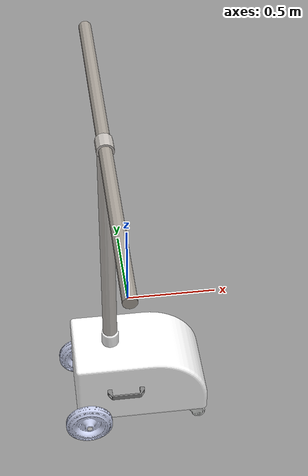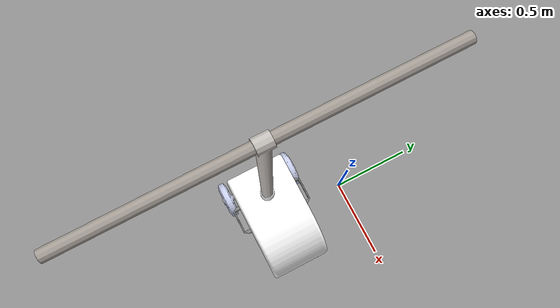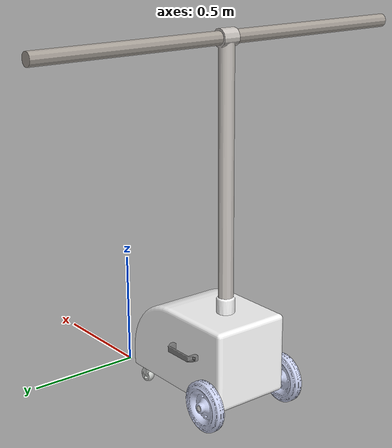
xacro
<?xml version="1.0" ?>
<!-- |    This document was autogenerated by xacro from modelagem3.urdf                | -->
<!-- |    EDITING THIS FILE BY HAND IS NOT RECOMMENDED                                 | -->
<robot name="modelagem3">
  <link name="corpo">
    <inertial>
      <origin rpy="0 0 0" xyz="-0.0157334965830891 -0.459999999999994 -0.0514316049391388"/>
      <mass value="831.187091350493"/>
      <inertia ixx="21.5625063866625" ixy="-7.94323452544889E-14" ixz="2.30052110058882" iyy="41.3563147714441" iyz="3.89735598441964E-15" izz="41.8913865465296"/>
    </inertial>
    <visual>
      <origin rpy="0 0 0" xyz="0 0 0"/>
      <geometry>
        <mesh filename="package://modelagem3/meshes/corpo.STL"/>
      </geometry>
      <material name="">
        <color rgba="1 1 1 1"/>
      </material>
    </visual>
    <collision>
      <origin rpy="0 0 0" xyz="0 0 0"/>
      <geometry>
        <mesh filename="package://modelagem3/meshes/corpo.STL"/>
      </geometry>
    </collision>
  </link>
  <link name="RodaF1">
    <inertial>
      <origin rpy="0 0 0" xyz="-0.0364997754572476 -1.11022302462516E-16 1.11022302462516E-16"/>
      <mass value="1.79874269449956"/>
      <inertia ixx="0.015878498443145" ixy="2.55935364314535E-17" ixz="-2.72472956945357E-17" iyy="0.0083023953948364" iyz="3.25260651745651E-19" izz="0.0083023953948364"/>
    </inertial>
    <visual>
      <origin rpy="0 0 0" xyz="0 0 0"/>
      <geometry>
        <mesh filename="package://modelagem3/meshes/RodaF1.STL"/>
      </geometry>
      <material name="">
        <color rgba="0.792156862745098 0.819607843137255 0.933333333333333 1"/>
      </material>
    </visual>
    <collision>
      <origin rpy="0 0 0" xyz="0 0 0"/>
      <geometry>
        <mesh filename="package://modelagem3/meshes/RodaF1.STL"/>
      </geometry>
    </collision>
  </link>
  <joint name="eixoF1" type="revolute">
    <origin rpy="1.6032 0 1.5708" xyz="-0.28942 -0.667 -0.20667"/>
    <parent link="corpo"/>
    <child link="RodaF1"/>
    <axis xyz="1 0 0"/>
    <limit effort="0" lower="0" upper="0" velocity="0"/>
  </joint>
  <link name="RodaF2">
    <inertial>
      <origin rpy="0 0 0" xyz="-0.0364997754572478 -1.11022302462516E-16 1.11022302462516E-16"/>
      <mass value="1.79874269449957"/>
      <inertia ixx="0.015878498443145" ixy="1.86814051950158E-17" ixz="-3.24430490955079E-17" iyy="0.00830239539483641" iyz="6.50521303491303E-19" izz="0.00830239539483641"/>
    </inertial>
    <visual>
      <origin rpy="0 0 0" xyz="0 0 0"/>
      <geometry>
        <mesh filename="package://modelagem3/meshes/RodaF2.STL"/>
      </geometry>
      <material name="">
        <color rgba="0.792156862745098 0.819607843137255 0.933333333333333 1"/>
      </material>
    </visual>
    <collision>
      <origin rpy="0 0 0" xyz="0 0 0"/>
      <geometry>
        <mesh filename="package://modelagem3/meshes/RodaF2.STL"/>
      </geometry>
    </collision>
  </link>
  <joint name="eixoF2" type="revolute">
    <origin rpy="1.8348 0 1.5708" xyz="-0.28942 -0.18 -0.20667"/>
    <parent link="corpo"/>
    <child link="RodaF2"/>
    <axis xyz="1 0 0"/>
    <limit effort="0" lower="0" upper="0" velocity="0"/>
  </joint>
  <link name="Alca1">
    <inertial>
      <origin rpy="0 0 0" xyz="-0.0885003692363609 0.0315828274647633 -1.71114535735262E-10"/>
      <mass value="0.0786405605466979"/>
      <inertia ixx="2.78152492465357E-05" ixy="-7.54013284406261E-11" ixz="3.15610154837557E-10" iyy="0.000329356293997707" iyz="1.00658694493981E-12" izz="0.000344978544619771"/>
    </inertial>
    <visual>
      <origin rpy="0 0 0" xyz="0 0 0"/>
      <geometry>
        <mesh filename="package://modelagem3/meshes/Alca1.STL"/>
      </geometry>
      <material name="">
        <color rgba="0.501960784313725 0.501960784313725 0.501960784313725 1"/>
      </material>
    </visual>
    <collision>
      <origin rpy="0 0 0" xyz="0 0 0"/>
      <geometry>
        <mesh filename="package://modelagem3/meshes/Alca1.STL"/>
      </geometry>
    </collision>
  </link>
  <joint name="alcafixa1" type="fixed">
    <origin rpy="-3.1416 0 0" xyz="0.002581 -0.66 -0.011674"/>
    <parent link="corpo"/>
    <child link="Alca1"/>
    <axis xyz="0 0 0"/>
  </joint>
  <link name="Alca2">
    <inertial>
      <origin rpy="0 0 0" xyz="-3.69236361430492E-07 0.0315828274647621 -1.71114220015589E-10"/>
      <mass value="0.0786405605466976"/>
      <inertia ixx="2.78152492465357E-05" ixy="-7.54013308839736E-11" ixz="3.1561015702756E-10" iyy="0.000329356293997706" iyz="1.00658692723597E-12" izz="0.00034497854461977"/>
    </inertial>
    <visual>
      <origin rpy="0 0 0" xyz="0 0 0"/>
      <geometry>
        <mesh filename="package://modelagem3/meshes/Alca2.STL"/>
      </geometry>
      <material name="">
        <color rgba="0.501960784313725 0.501960784313725 0.501960784313725 1"/>
      </material>
    </visual>
    <collision>
      <origin rpy="0 0 0" xyz="0 0 0"/>
      <geometry>
        <mesh filename="package://modelagem3/meshes/Alca2.STL"/>
      </geometry>
    </collision>
  </link>
  <joint name="alcafixa2" type="fixed">
    <origin rpy="0 0 0" xyz="-0.085919 -0.26 -0.011674"/>
    <parent link="corpo"/>
    <child link="Alca2"/>
    <axis xyz="0 0 0"/>
  </joint>
  <link name="RodaB1">
    <inertial>
      <origin rpy="0 0 0" xyz="0.0268128447902884 -0.0497671963283731 1.44827982384577E-07"/>
      <mass value="1.11891461916953"/>
      <inertia ixx="0.00058123900459818" ixy="2.33039359792154E-05" ixz="-3.98329056463793E-09" iyy="0.000767935830161438" iyz="-2.41929146907131E-09" izz="0.000872015950337573"/>
    </inertial>
    <visual>
      <origin rpy="0 0 0" xyz="0 0 0"/>
      <geometry>
        <mesh filename="package://modelagem3/meshes/RodaB1.STL"/>
      </geometry>
      <material name="">
        <color rgba="0.827450980392157 0.83921568627451 0.827450980392157 1"/>
      </material>
    </visual>
    <collision>
      <origin rpy="0 0 0" xyz="0 0 0"/>
      <geometry>
        <mesh filename="package://modelagem3/meshes/RodaB1.STL"/>
      </geometry>
    </collision>
  </link>
  <joint name="eixoB1" type="revolute">
    <origin rpy="1.5708 0 0" xyz="0.28091 -0.60732 -0.23867"/>
    <parent link="corpo"/>
    <child link="RodaB1"/>
    <axis xyz="0 1 0"/>
    <limit effort="0" lower="0" upper="0" velocity="0"/>
  </joint>
  <link name="RodaB2">
    <inertial>
      <origin rpy="0 0 0" xyz="-0.0155371552212751 -0.0497671963283732 0.0300501448279821"/>
      <mass value="1.11891461916965"/>
      <inertia ixx="0.000581239004598237" ixy="2.33039361380988E-05" ixz="-3.98336471160395E-09" iyy="0.000767943704580933" iyz="-2.41929148474213E-09" izz="0.000872023824757086"/>
    </inertial>
    <visual>
      <origin rpy="0 0 0" xyz="0 0 0"/>
      <geometry>
        <mesh filename="package://modelagem3/meshes/RodaB2.STL"/>
      </geometry>
      <material name="">
        <color rgba="0.827450980392157 0.83921568627451 0.827450980392157 1"/>
      </material>
    </visual>
    <collision>
      <origin rpy="0 0 0" xyz="0 0 0"/>
      <geometry>
        <mesh filename="package://modelagem3/meshes/RodaB2.STL"/>
      </geometry>
    </collision>
  </link>
  <joint name="eixoB2" type="revolute">
    <origin rpy="1.5708 0 0" xyz="0.32543 -0.28995 -0.23867"/>
    <parent link="corpo"/>
    <child link="RodaB2"/>
    <axis xyz="0 1 0"/>
    <limit effort="0" lower="0" upper="0" velocity="0"/>
  </joint>
  <link name="barra_vertical">
    <inertial>
      <origin rpy="0 0 0" xyz="0.677075466810363 2.38697950294409E-15 4.9960036108132E-16"/>
      <mass value="46.9865733241111"/>
      <inertia ixx="0.0341531133134682" ixy="-2.58890846376507E-14" ixz="-5.71006794466207E-15" iyy="7.2189996525033" iyz="-1.3523770690007E-08" izz="7.21873579285521"/>
    </inertial>
    <visual>
      <origin rpy="0 0 0" xyz="0 0 0"/>
      <geometry>
        <mesh filename="package://modelagem3/meshes/barra_vertical.STL"/>
      </geometry>
      <material name="">
        <color rgba="0.776470588235294 0.756862745098039 0.737254901960784 1"/>
      </material>
    </visual>
    <collision>
      <origin rpy="0 0 0" xyz="0 0 0"/>
      <geometry>
        <mesh filename="package://modelagem3/meshes/barra_vertical.STL"/>
      </geometry>
    </collision>
  </link>
  <joint name="junta_fixa_vertical" type="fixed">
    <origin rpy="0 -1.5708 0" xyz="-0.14442 -0.46 0.12833"/>
    <parent link="corpo"/>
    <child link="barra_vertical"/>
    <axis xyz="0 0 0"/>
  </joint>
  <link name="barra_horizontal">
    <inertial>
      <origin rpy="0 0 0" xyz="0 5.55111512312578E-17 0"/>
      <mass value="51.1019315014549"/>
      <inertia ixx="17.0474712709387" ixy="5.33186613133201E-14" ixz="1.88213533724175E-28" iyy="0.0269882075742058" iyz="-6.01026447317545E-14" izz="17.0474712709387"/>
    </inertial>
    <visual>
      <origin rpy="0 0 0" xyz="0 0 0"/>
      <geometry>
        <mesh filename="package://modelagem3/meshes/barra_horizontal.STL"/>
      </geometry>
      <material name="">
        <color rgba="0.647058823529412 0.619607843137255 0.588235294117647 1"/>
      </material>
    </visual>
    <collision>
      <origin rpy="0 0 0" xyz="0 0 0"/>
      <geometry>
        <mesh filename="package://modelagem3/meshes/barra_horizontal.STL"/>
      </geometry>
    </collision>
  </link>
  <joint name="junta_horizontal" type="fixed">
    <origin rpy="0 -1.5708 0" xyz="1.343 0 0"/>
    <parent link="barra_vertical"/>
    <child link="barra_horizontal"/>
    <axis xyz="0 0 1"/>
    <limit effort="0" lower="0" upper="0" velocity="0"/>
  </joint>
  <gazebo>
  <plugin name="gazebo_ros_control" filename="libgazebo_ros_control.so">
    <robotNamespace>/modelagem3</robotNamespace>
    <robotSimType>gazebo_ros_control/DefaultRobotHWSim</robotSimType>
  </plugin>
</gazebo>
<transmission name="tran1">
    <type>transmission_interface/SimpleTransmission</type>
    <joint name="eixoF1">
      <hardwareInterface>EffortJointInterface</hardwareInterface>
    </joint>
    <actuator name="motor1">
      <hardwareInterface>EffortJointInterface</hardwareInterface>
      <mechanicalReduction>1</mechanicalReduction>
    </actuator>
  </transmission>

  <transmission name="tran2">
    <type>transmission_interface/SimpleTransmission</type>
    <joint name="eixoF2">
      <hardwareInterface>EffortJointInterface</hardwareInterface>
    </joint>
    <actuator name="motor2">
      <hardwareInterface>EffortJointInterface</hardwareInterface>
      <mechanicalReduction>1</mechanicalReduction>
    </actuator>
  </transmission>
</robot>
